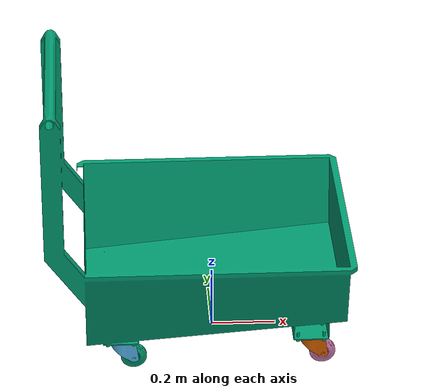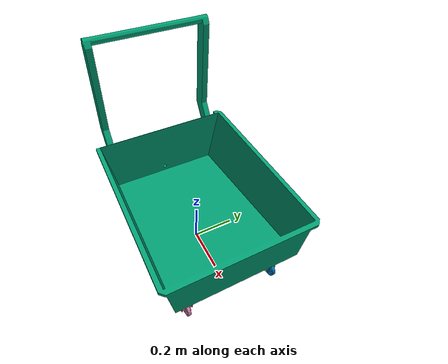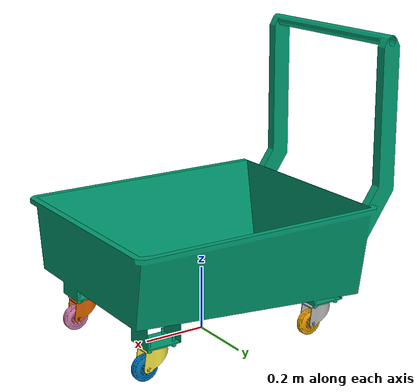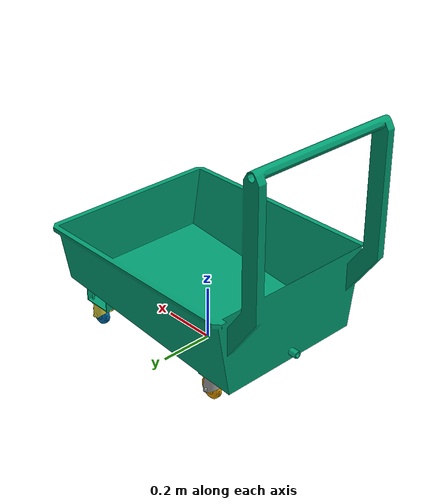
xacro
<?xml version="1.0"?>
<robot xmlns:xacro="http://www.ros.org/wiki/xacro" name="empty_bin">

    <!-- Definizione della variabile prefix -->
    <xacro:property name="prefix" value="empty_bin"/>

    <link name="${prefix}_base_footprint">
    </link>

    <link name="${prefix}_base_link">
    </link>

    <joint name="${prefix}_base_link_base_footprintjoint" type="fixed">
        <origin rpy="0 0 0" xyz="0 0 0.103" />
        <parent link="${prefix}_base_footprint" />
        <child link="${prefix}_base_link" />
    </joint>

    <!-- chassis-->
    <link name="${prefix}_chassis">
    <visual>
      <origin xyz="0 0 0" rpy="0 0 0"/>
      <geometry>
        <mesh filename="package://amrj16_bin_description/models/meshes/utimac_bin_v1.dae"/>
      </geometry>
    </visual>

    <collision>
      <origin xyz="0 0 0" rpy="0 0 0"/>
      <geometry>
       <mesh filename="package://amrj16_bin_description/models/meshes/utimac_bin_v1.dae"/>
      </geometry>
    </collision>

    <inertial>
        <mass value="38"/>
        <origin rpy="0 0 0" xyz="-0.1055 0 -0.0199"/>
        <inertia ixx="8.1" ixy="0.00213" ixz="4.56" iyy="11.5" iyz="-0.00156" izz="7.71"/>
    </inertial>

  </link>

    <joint name="${prefix}_base_link_joint" type="fixed">
        <origin rpy="0 0 0" xyz="0 0 0" />
        <parent link="${prefix}_base_link" />
        <child link="${prefix}_chassis" />
    </joint>

    <!-- front-right caster hub -->
    <link name="${prefix}_front_right_caster_hub">
        <visual>
            <origin xyz="0 0 0" rpy="0 0 0"/>
                <geometry>
                    <mesh filename="package://amrj16_bin_description/models/meshes/utimac_caster_bin_v1.dae"/>
                </geometry>
        </visual>

    <collision>
        <origin xyz="0 0 0" rpy="0 0 0"/>
        <geometry>
                <mesh filename="package://amrj16_bin_description/models/meshes/utimac_caster_bin_v1.dae"/>
        </geometry>
    </collision>

    <inertial>
        <mass value="0.7"/>
        <origin rpy="0 0 0" xyz="0 0 0"/>
        <inertia
            ixx="0.0008063" ixy="0.00000393" ixz="-0.00000650" iyy="0.000693" iyz="0.000265" izz="0.0005498"/>
    </inertial>

    </link>

    <joint name="${prefix}_chassis_front_right_caster_hub_joint" type="continuous">
        <origin xyz="0.2925 0.215 0" rpy="0 0 0"/>
        <parent link="${prefix}_chassis"/>
        <child link="${prefix}_front_right_caster_hub"/>
        <axis xyz="0 0 1"/>
        <dynamics damping="0.5" friction="0.5"/>
    </joint>

    <!-- front-right caster wheel -->
    <link name="${prefix}_front_right_caster_wheel">
        <visual>
            <origin xyz="0 0 0" rpy="0 0 0"/>
                <geometry>
                    <mesh filename="package://amrj16_bin_description/models/meshes/utimac_wheel_bin_v1.dae"/>
                </geometry>
        </visual>

    <collision>
        <origin xyz="0 0 0" rpy="0 0 0"/>
        <geometry>
            <cylinder radius="0.040" length="0.02"/>
        </geometry>
    </collision>

    <inertial>
        <mass value="0.5"/>
        <origin  xyz="0 0 0" rpy="0 0 0"/>
        <inertia
           ixx="0.0003265" ixy="0" ixz="0" iyy="0.0003265" iyz="0" izz="0.0005849"/>
    </inertial>

    </link>

    <gazebo reference="${prefix}_front_right_caster_wheel">
        <kp>5000000000</kp>
        <kd>5000000000</kd>
        <mu1>10.0</mu1>
        <mu2>10.0</mu2>
    </gazebo>

    <joint name="${prefix}_front_right_caster_hub_wheel_joint" type="continuous">
        <origin xyz="0.039 0 -0.067" rpy="1.57 0 0"/>
        <parent link="${prefix}_front_right_caster_hub"/>
        <child link="${prefix}_front_right_caster_wheel"/>
        <axis xyz="0 0 1"/>
        <dynamics damping="0.5" friction="0.5"/>
    </joint>

    <!-- front-left caster hub -->
    <link name="${prefix}_front_left_caster_hub">
        <visual>
            <origin xyz="0 0 0" rpy="0 0 0"/>
                <geometry>
                    <mesh filename="package://amrj16_bin_description/models/meshes/utimac_caster_bin_v1.dae"/>
                </geometry>
        </visual>

        <collision>
            <origin xyz="0 0 0" rpy="0 0 0"/>
            <geometry>
                <mesh filename="package://amrj16_bin_description/models/meshes/utimac_caster_bin_v1.dae"/>
            </geometry>
        </collision>

        <inertial>
            <mass value="0.7"/>
            <origin rpy="0 0 0" xyz="0 0 0"/>
            <inertia
                 ixx="0.0008063" ixy="0.00000393" ixz="-0.00000650" iyy="0.000693" iyz="0.000265" izz="0.0005498"/>
        </inertial>
    </link>

    <joint name="${prefix}_chassis_front_left_caster_hub_joint" type="continuous">
        <origin xyz="0.2925 -0.215 0" rpy="0 0 0"/>
        <parent link="${prefix}_chassis"/>
        <child link="${prefix}_front_left_caster_hub"/>
        <axis xyz="0 0 1"/>
        <dynamics damping="0.5" friction="0.5"/>
    </joint>

    <!-- front-left caster wheel -->
    <link name="${prefix}_front_left_caster_wheel">
        <visual>
            <origin xyz="0 0 0" rpy="0 0 0"/>
                <geometry>
                    <mesh filename="package://amrj16_bin_description/models/meshes/utimac_wheel_bin_v1.dae"/>
                </geometry>
        </visual>

        <collision>
            <origin xyz="0 0 0" rpy="0 0 0"/>
            <geometry>
                <cylinder radius="0.040" length="0.02"/>
            </geometry>
        </collision>

        <inertial>
            <mass value="0.5"/>
            <origin rpy="0 0 0" xyz="0 0 0"/>
            <inertia
                ixx="0.0003265" ixy="0" ixz="0" iyy="0.0003265" iyz="0" izz="0.0005849"/>
        </inertial>

    </link>

    <gazebo reference="${prefix}_front_left_caster_wheel">
        <kp>5000000000</kp>
        <kd>5000000000</kd>
        <mu1>10.0</mu1>
        <mu2>10.0</mu2>
    </gazebo>

    <joint name="${prefix}_front_left_caster_hub_wheel_joint" type="continuous">
       <origin xyz="0.039 0 -0.067" rpy="1.57 0 0"/>
        <parent link="${prefix}_front_left_caster_hub"/>
        <child link="${prefix}_front_left_caster_wheel"/>
        <axis xyz="0 0 1"/>
        <dynamics damping="0.5" friction="0.5"/>
    </joint>

 <!-- rear-right caster hub -->
    <link name="${prefix}_rear_right_caster_hub">
        <visual>
            <origin xyz="0 0 0" rpy="0 0 0"/>
                <geometry>
                    <mesh filename="package://amrj16_bin_description/models/meshes/utimac_caster_bin_v1.dae"/>
                </geometry>
        </visual>

    <collision>
        <origin xyz="0 0 0" rpy="0 0 0"/>
        <geometry>
                <mesh filename="package://amrj16_bin_description/models/meshes/utimac_caster_bin_v1.dae"/>
        </geometry>
    </collision>

    <inertial>
        <mass value="0.7"/>
        <origin rpy="0 0 0" xyz="0 0 0"/>
        <inertia
           ixx="0.0008063" ixy="0.00000393" ixz="-0.00000650" iyy="0.000693" iyz="0.000265" izz="0.0005498"/>
    </inertial>

    </link>

    <joint name="${prefix}_chassis_rear_right_caster_hub_joint" type="continuous">
       <origin xyz="-0.2925 0.215 0" rpy="0 0 0"/>
        <parent link="${prefix}_chassis"/>
        <child link="${prefix}_rear_right_caster_hub"/>
        <axis xyz="0 0 1"/>
        <dynamics damping="0.5" friction="0.5"/>
    </joint>

    <!-- rear-right caster wheel -->
    <link name="${prefix}_rear_right_caster_wheel">
        <visual>
            <origin xyz="0 0 0" rpy="0 0 0"/>
                <geometry>
                    <mesh filename="package://amrj16_bin_description/models/meshes/utimac_wheel_bin_v1.dae"/>
                </geometry>
        </visual>

    <collision>
        <origin xyz="0 0 0" rpy="0 0 0"/>
        <geometry>
            <cylinder radius="0.040" length="0.02"/>
        </geometry>
    </collision>

    <inertial>
        <mass value="0.5"/>
        <origin rpy="0 0 0" xyz="0 0 0"/>
        <inertia
           ixx="0.0003265" ixy="0" ixz="0" iyy="0.0003265" iyz="0" izz="0.0005849"/>
    </inertial>

    </link>

    <gazebo reference="${prefix}_rear_right_caster_wheel">
        <kp>5000000000</kp>
        <kd>5000000000</kd>
        <mu1>10.0</mu1>
        <mu2>10.0</mu2>
    </gazebo>

    <joint name="${prefix}_rear_right_caster_hub_wheel_joint" type="continuous">
       <origin xyz="0.039 0 -0.067" rpy="1.57 0 0"/>
        <parent link="${prefix}_rear_right_caster_hub"/>
        <child link="${prefix}_rear_right_caster_wheel"/>
        <axis xyz="0 0 1"/>
        <dynamics damping="0.5" friction="0.5"/>
    </joint>

 <!-- rear-left caster hub -->
    <link name="${prefix}_rear_left_caster_hub">
        <visual>
            <origin xyz="0 0 0" rpy="0 0 0"/>
                <geometry>
                    <mesh filename="package://amrj16_bin_description/models/meshes/utimac_caster_bin_v1.dae"/>
                </geometry>
        </visual>

        <collision>
            <origin xyz="0 0 0" rpy="0 0 0"/>
            <geometry>
                <mesh filename="package://amrj16_bin_description/models/meshes/utimac_caster_bin_v1.dae"/>
            </geometry>
        </collision>

        <inertial>
            <mass value="0.7"/>
            <origin rpy="0 0 0" xyz="0 0 0"/>
            <inertia
                ixx="0.0008063" ixy="0.00000393" ixz="-0.00000650" iyy="0.000693" iyz="0.000265" izz="0.0005498"/>
        </inertial>
    </link>

    <joint name="${prefix}_chassis_rear_left_caster_hub_joint" type="continuous">
       <origin xyz="-0.2925 -0.215 0" rpy="0 0 0"/>
        <parent link="${prefix}_chassis"/>
        <child link="${prefix}_rear_left_caster_hub"/>
        <axis xyz="0 0 1"/>
        <dynamics damping="0.5" friction="0.5"/>
    </joint>

    <!-- rear-left caster wheel -->
    <link name="${prefix}_rear_left_caster_wheel">
        <visual>
            <origin xyz="0 0 0" rpy="0 0 0"/>
                <geometry>
                    <mesh filename="package://amrj16_bin_description/models/meshes/utimac_wheel_bin_v1.dae"/>
                </geometry>
        </visual>

        <collision>
            <origin xyz="0 0 0" rpy="0 0 0"/>
            <geometry>
                <cylinder radius="0.040" length="0.02"/>
            </geometry>
        </collision>

        <inertial>
            <mass value="0.5"/>
            <origin rpy="0 0 0" xyz="0 0 0"/>
            <inertia
               ixx="0.0003265" ixy="0" ixz="0" iyy="0.0003265" iyz="0" izz="0.0005849"/>
        </inertial>

    </link>

    <gazebo reference="${prefix}_rear_left_caster_wheel">
        <kp>5000000000</kp>
        <kd>5000000000</kd>
        <mu1>10.0</mu1>
        <mu2>10.0</mu2>
    </gazebo>

    <joint name="${prefix}_rear_left_caster_hub_wheel_joint" type="continuous">
        <origin xyz="0.039 0 -0.067" rpy="1.57 0 0"/>
        <parent link="${prefix}_rear_left_caster_hub"/>
        <child link="${prefix}_rear_left_caster_wheel"/>
        <axis xyz="0 0 1"/>
        <dynamics damping="0.5" friction="0.5"/>
    </joint>

    <!-- PLUGINS -->
    <!-- JOINT PUBLISHER -->
    <gazebo>
      <plugin name="${prefix}__joint_state" filename="libgazebo_ros_joint_state_publisher.so">
      <ros>
          <remapping>~/out:=${prefix}_joint_states</remapping>
      </ros>
      <update_rate>30</update_rate>

      <joint_name>${prefix}_chassis_front_right_caster_hub_joint</joint_name>
      <joint_name>${prefix}_front_right_caster_hub_wheel_joint</joint_name>

      <joint_name>${prefix}_chassis_front_left_caster_hub_joint</joint_name>
      <joint_name>${prefix}_front_left_caster_hub_wheel_joint</joint_name>

      <joint_name>${prefix}_chassis_rear_right_caster_hub_joint</joint_name>
      <joint_name>${prefix}_rear_right_caster_hub_wheel_joint</joint_name>

      <joint_name>${prefix}_chassis_rear_left_caster_hub_joint</joint_name>
      <joint_name>${prefix}_rear_left_caster_hub_wheel_joint</joint_name>

    </plugin>
  </gazebo>

</robot>
